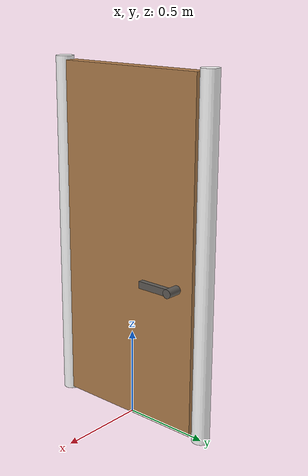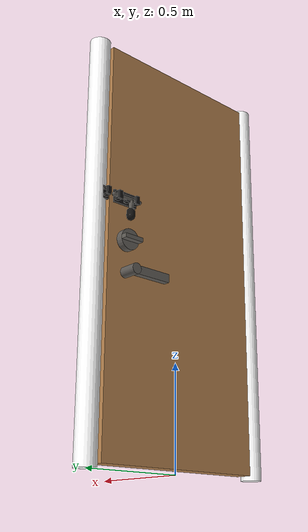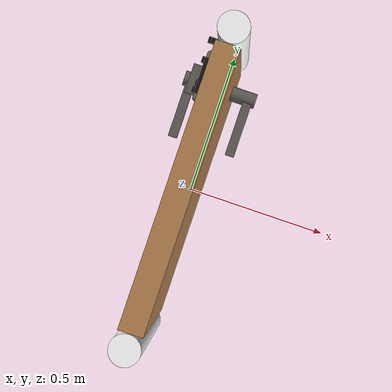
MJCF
<?xml version="1.0" encoding="utf-8"?>
<!-- from https://github.com/vikashplus/mj_envs/tree/master/mj_envs/hand_manipulation_suite/assets -->
<!-- Information about door can be found in this paper: https://arxiv.org/pdf/1709.10087.pdf -->

<mujoco model="door_lock">
  <asset>
    <texture file="../textures/light-wood.png" type="cube" name="light-wood" />
    <texture file="../textures/steel-brushed.png" type="cube" name="metal" />
    <texture file="../textures/navy.png" type="cube" name="glass" />
    <material name="MatLightWood" texture="light-wood" texrepeat="3 3" specular="0.4" shininess="0.1" />
    <material name="MatBright" texture="metal" specular="1" shininess="0.3" rgba="0.5 0.5 0.5 1" />
    <material name="MatMedium" texture="metal" specular="0.2" shininess="0.3" rgba="0.3 0.3 0.3 1" />
    <material name="MatDark" texture="metal" specular="0.2" shininess="0.3" rgba="0.1 0.1 0.1 1" />
    <material name="MatGlass" texture="glass" specular="1" shininess="0.3" rgba="1.0 1.0 1.0 1" />
  </asset>
    <worldbody>
      <body>
        <body name="object">
          <body quat="0 0 0 1" pos="0 0 1.0">
            <body name="frame" pos="0 0 0" quat="0.707107 0 0 0.707107">
              <geom name="r_frame"
                size="0.05 1.0" pos="0.5 0 0" type="cylinder" rgba="1 1 1 1"
                contype="0" conaffinity="0"  group="1"
                />
              <geom name="l_frame"
                size="0.05 1.0" pos="-0.5 0 0" type="cylinder" rgba="1 1 1 1"
                contype="0" conaffinity="0"  group="1"
                />

              <body name="latch_female" pos="-0.48 -0.04 0.2">
                <geom
                  type="box" size="0.02 0.0045 0.03" pos="0 -0.0045 0"
                  material="MatDark"
                  group="1"
                  />
                <geom
                  type="box" size="0.01 0.011 0.0045" pos="0 -0.02 0.0155"
                  material="MatDark"
                  group="0"
                  />
                  <geom
                  type="box" size="0.01 0.011 0.0045" pos="0 -0.02 -0.0155"
                  material="MatDark"
                  group="0"
                  />
                <geom
                  type="box" size="0.01 0.0045 0.02" pos="0 -0.0355 0"
                  material="MatDark"
                  group="0"
                  />
            </body>

              <body name="door" pos="0 0 0">
                <inertial pos="0 0 0" mass="1.47392" diaginertia="0.472637 0.580381 0.109316"/>
                <!-- Density 20 kg/m^3 -->
                <joint name="hinge" pos="0.5 0 0" axis="0 0 1" range="0.0 3.0" limited="true"
                  damping="1" frictionloss="1" stiffness="1"
                  springref="0"
                  />

                <geom size="0.45 0.04 0.98" type="box" friction="1 1 1" group="1" name="panel" material="MatLightWood"/>

                <body name="latch_male" pos="-0.35 0  0.2">

                  <body name="latch_bar" pos="-0.088 -0.06 0">
                    <inertial pos="0 0 0" quat="0.365653 0.605347 -0.36522 0.605365" mass="0.1" diaginertia="0.0483771 0.0410001 0.0111013" />
                    <joint name="latch_slide_joint"
                      type="slide"
                      axis="-1 0 0" range="0 0.05" limited="true"
                      damping="0" frictionloss="0.1"
                      />
                    <joint name="latch_revolution_joint"
                      axis="-1 0 0" range="0 1.6" limited="true"
                      damping="0" frictionloss="0.1"
                      />
                    <geom
                      fromto="0.0 0 0 0.15 0 0" size="0.01" type="capsule"
                      group="0"
                      material="MatBright"
                      />
                    <geom name="geom_latch_bar_vertical"
                      fromto="0.1 0 0 0.1 0 -0.06" size="0.01" type="cylinder"
                      group="0"
                      material="MatBright"
                      />
                    <geom
                      fromto="0.1 0 -0.06 0.1 0 -0.08" size="0.02" type="capsule"
                      group="0"
                      material="MatDark"
                      />
                    <site name="latch" pos="0.1 0 -0.07" size="0.02" rgba="0 0 1 0" />
                  </body>

                  <body name="latch_rail" pos="-0.088 -0.04 0">
                    <geom
                      type="box" size="0.065 0.0045 0.03" pos="0.075 -0.0045 0"
                      material="MatDark"
                      group="0"
                      />
                    <geom
                      type="box" size="0.06 0.011 0.0045" pos="0.075 -0.02 0.0155"
                      material="MatDark"
                      group="0"
                      />
                    <geom
                      type="box" size="0.01 0.011 0.0045" pos="0.125 -0.02 -0.0155"
                      material="MatDark"
                      group="0"
                      />
                    <geom name="geom_latch_rail_middle"
                      type="box" size="0.01 0.011 0.0045" pos="0.075 -0.02 -0.0155"
                      material="MatDark"
                      group="0"
                      />
                    <geom
                      type="box" size="0.01 0.011 0.0045" pos="0.025 -0.02 -0.0155"
                      material="MatDark"
                      group="0"
                      />
                    <geom
                      type="box" size="0.01 0.0045 0.02" pos="0.025 -0.0355 0"
                      material="MatDark"
                      group="0"
                      />
                    <geom
                      type="box" size="0.01 0.0045 0.02" pos="0.125 -0.0355 0"
                      material="MatDark"
                      group="0"
                      />
                  </body>
                </body>

                <body name="lock" pos="-0.35 0  0.0">
                    <inertial pos="0 0 0" mass="0.1" diaginertia="0.01 0.01 0.01" />
                    <joint name="lock_joint" pos="0 0 0" axis="0 1 0" range="0 1.57"
                      frictionloss="0.1" damping="0" limited="true"
                      />
                    <geom fromto="0 0 0 0  -0.075 0" size="0.05" type="cylinder" group="0" name="handle_lock" material="MatBright"/>
                    <geom size="0.05 0.015 0.01" pos="0 -0.09 0" type="box" group="0" name="front_lock" material="MatBright"/>
                    <site name="lock" pos="0.125 -0.10 0" size="0.02" rgba="0 0 1 0" />
                </body>

                <body name="handle" pos="-0.35 0 -0.15">
                  <inertial pos="-0.017762 0 0" quat="0.365653 0.605347 -0.36522 0.605365" mass="0.1" diaginertia="0.0483771 0.0410001 0.0111013" />
                  <joint name="handle_joint" pos="0 0 0" axis="0 1 0" range="-1.57 1.57" frictionloss="0.1" damping="0" limited="true" springref="0" stiffness="1" />
                  <geom fromto="0 0.125 0 0 -0.125 0" size="0.025" type="cylinder" group="0" name="handle_base" material="MatBright"/>
                  <geom size="0.1 0.015 0.02" pos="0.1 -0.10 0" type="box" group="0" name="front_handle" material="MatBright"/>
                  <geom size="0.1 0.015 0.02" pos="0.1  0.10 0" type="box" group="0" name="back_handle" material="MatBright"/>
                  <!-- Don't render the door handle site by default -->
                  <site name="handle" pos="0.125 -0.10 0" size="0.02" rgba="0 0 1 0" />
                </body>
              </body>
            </body>
          </body>
        </body>
        <site name="bottom_site" pos="0 0 -0.6" rgba="0 0 0 0" size="0.005"/>
        <site name="top_site" pos="0 0 0.6" rgba="0 0 0 0" size="0.005"/>
        <site name="horizontal_radius_site" pos="0.3 0 0" rgba="0 0 0 0" size="0.1"/>
      </body>
    </worldbody>

  <contact>
    <pair geom1="geom_latch_bar_vertical" geom2="geom_latch_rail_middle"/>
  </contact>

</mujoco>
